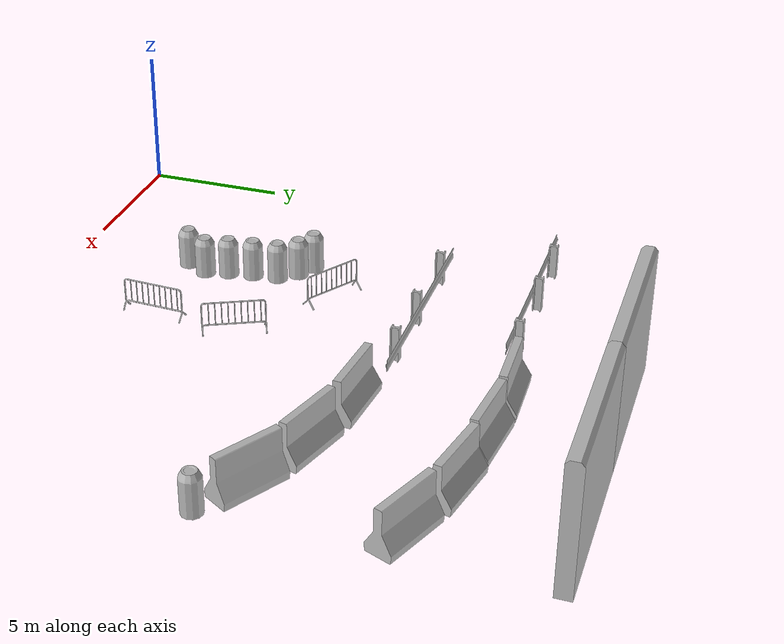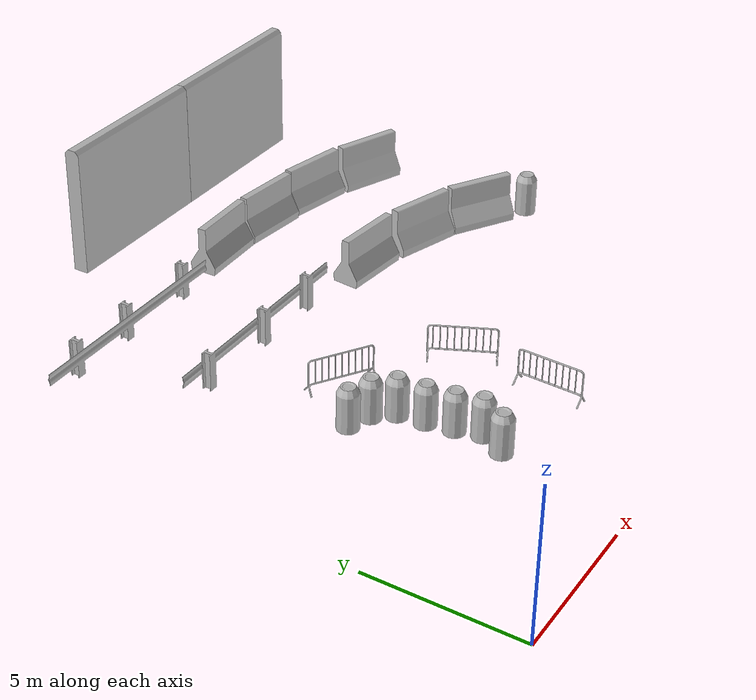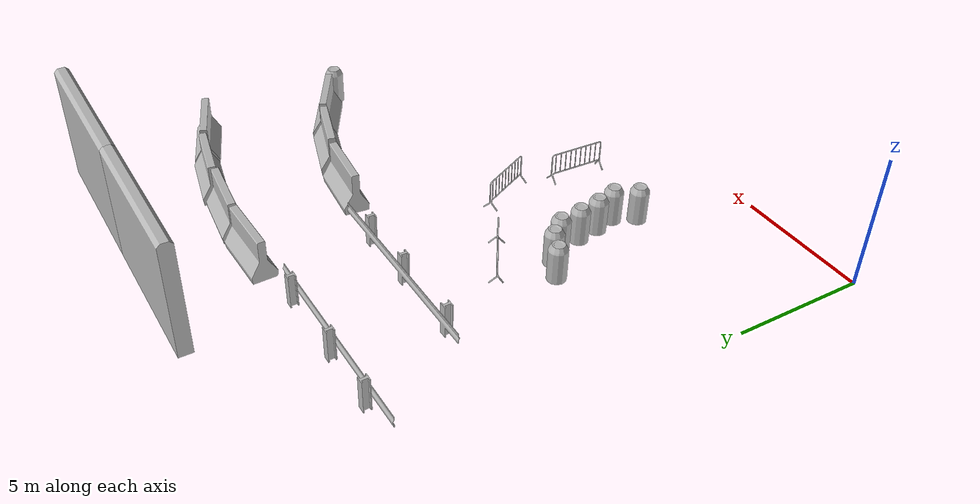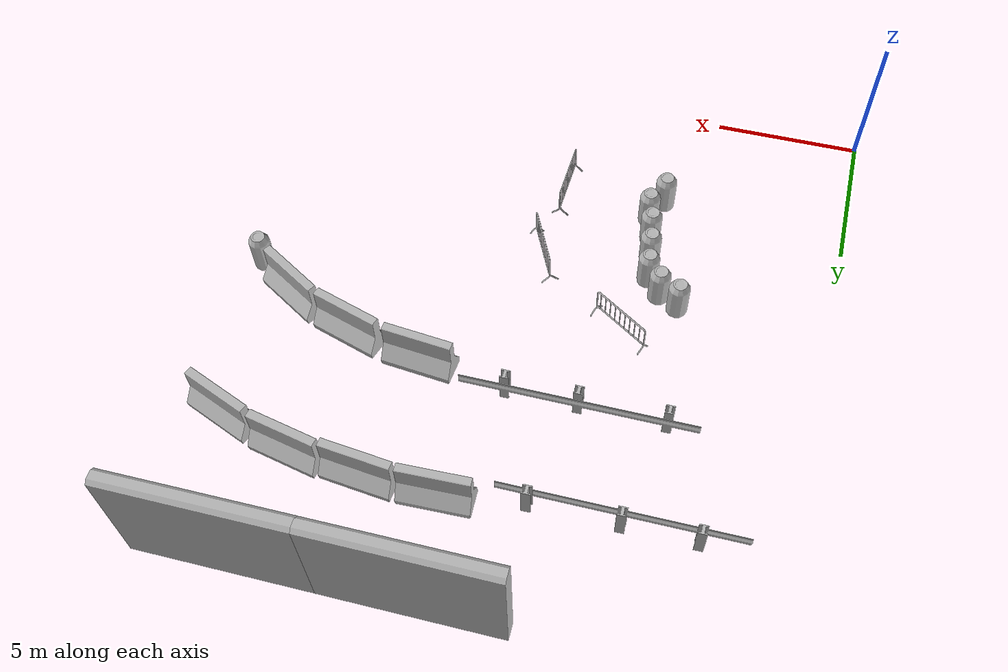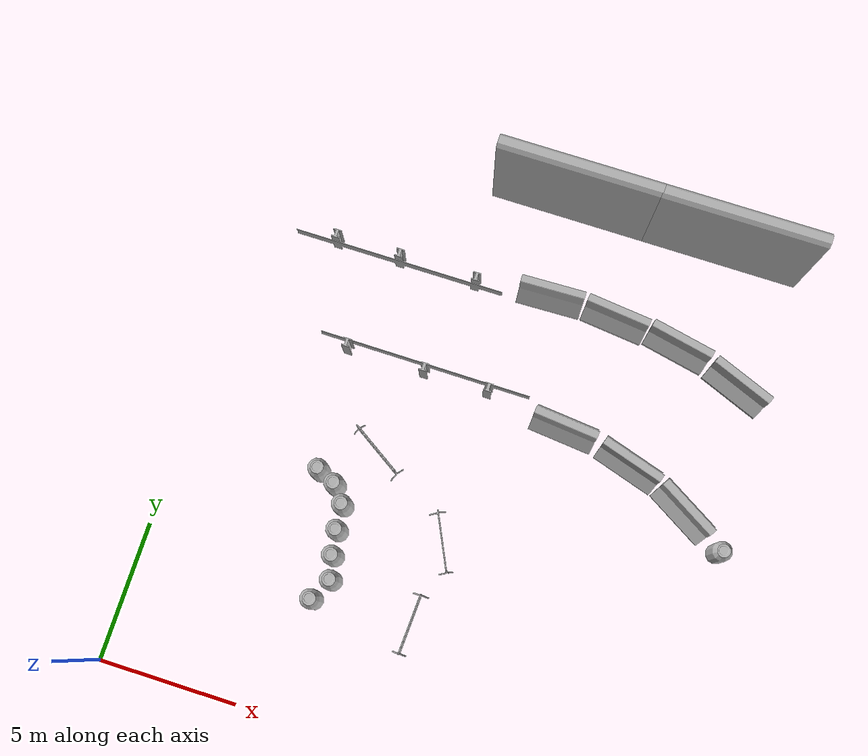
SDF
<sdf version="1.7">
 <world name="default">
  <model name="aws_robomaker_racetrack_CrashworthBucket_01_06">
   <frame name="aws_CrashworthBucket_01::__model__" attached_to="aws_CrashworthBucket_01::body">
    <pose relative_to="__model__">0 0 0 0 -0 0</pose>
   </frame>
   <link name="aws_CrashworthBucket_01::body">
    <pose relative_to="aws_CrashworthBucket_01::__model__">0 0 0 0 -0 0</pose>
    <inertial>
     <mass>5</mass>
     <inertia><ixx>1</ixx><ixy>0</ixy><ixz>0</ixz><iyy>1</iyy><iyz>0</iyz><izz>1</izz></inertia>
    </inertial>
    <visual name="visual">
     <geometry>
      <mesh>
       <uri>file://models/aws_robomaker_racetrack_CrashworthBucket_01/meshes/aws_CrashworthBucket_01_visual.DAE</uri>
      </mesh>
     </geometry>
     <material><shader type="pixel"><normal_map>__default__</normal_map></shader></material>
     <meta><layer>0</layer></meta>
    </visual>
    <collision name="collision_0">
     <geometry>
      <mesh>
       <uri>file://models/aws_robomaker_racetrack_CrashworthBucket_01/meshes/aws_CrashworthBucket_01_collision.DAE</uri>
       <scale>1 1 1</scale>
      </mesh>
     </geometry>
     <surface>
      <friction>
       <ode><mu>1</mu><mu2>1</mu2><fdir1>0 0 0</fdir1><slip1>0</slip1><slip2>0</slip2></ode>
       <torsional>
        <coefficient>1</coefficient>
        <patch_radius>0</patch_radius>
        <surface_radius>0</surface_radius>
        <use_patch_radius>1</use_patch_radius>
        <ode><slip>0</slip></ode>
       </torsional>
      </friction>
      <bounce><restitution_coefficient>0</restitution_coefficient><threshold>1e+06</threshold></bounce>
      <contact>
       <collide_without_contact>0</collide_without_contact>
       <collide_without_contact_bitmask>1</collide_without_contact_bitmask>
       <collide_bitmask>1</collide_bitmask>
       <ode>
        <soft_cfm>0</soft_cfm>
        <soft_erp>0.2</soft_erp>
        <kp>1e+13</kp>
        <kd>1</kd>
        <max_vel>0.01</max_vel>
        <min_depth>0</min_depth>
       </ode>
       <bullet>
        <split_impulse>1</split_impulse>
        <split_impulse_penetration_threshold>-0.01</split_impulse_penetration_threshold>
        <soft_cfm>0</soft_cfm>
        <soft_erp>0.2</soft_erp>
        <kp>1e+13</kp>
        <kd>1</kd>
       </bullet>
      </contact>
     </surface>
    </collision>
   </link>
   <static>1</static>
   <pose>5.18867 8.56895 0 0 0 -0.026658</pose>
  </model>
  <model name="aws_robomaker_racetrack_CrashworthBucket_01_07">
   <frame name="aws_CrashworthBucket_01::__model__" attached_to="aws_CrashworthBucket_01::body">
    <pose relative_to="__model__">0 0 0 0 -0 0</pose>
   </frame>
   <link name="aws_CrashworthBucket_01::body">
    <pose relative_to="aws_CrashworthBucket_01::__model__">0 0 0 0 -0 0</pose>
    <inertial>
     <mass>5</mass>
     <inertia><ixx>1</ixx><ixy>0</ixy><ixz>0</ixz><iyy>1</iyy><iyz>0</iyz><izz>1</izz></inertia>
    </inertial>
    <visual name="visual">
     <geometry>
      <mesh>
       <uri>file://models/aws_robomaker_racetrack_CrashworthBucket_01/meshes/aws_CrashworthBucket_01_visual.DAE</uri>
      </mesh>
     </geometry>
     <material><shader type="pixel"><normal_map>__default__</normal_map></shader></material>
     <meta><layer>0</layer></meta>
    </visual>
    <collision name="collision_0">
     <geometry>
      <mesh>
       <uri>file://models/aws_robomaker_racetrack_CrashworthBucket_01/meshes/aws_CrashworthBucket_01_collision.DAE</uri>
       <scale>1 1 1</scale>
      </mesh>
     </geometry>
     <surface>
      <friction>
       <ode><mu>1</mu><mu2>1</mu2><fdir1>0 0 0</fdir1><slip1>0</slip1><slip2>0</slip2></ode>
       <torsional>
        <coefficient>1</coefficient>
        <patch_radius>0</patch_radius>
        <surface_radius>0</surface_radius>
        <use_patch_radius>1</use_patch_radius>
        <ode><slip>0</slip></ode>
       </torsional>
      </friction>
      <bounce><restitution_coefficient>0</restitution_coefficient><threshold>1e+06</threshold></bounce>
      <contact>
       <collide_without_contact>0</collide_without_contact>
       <collide_without_contact_bitmask>1</collide_without_contact_bitmask>
       <collide_bitmask>1</collide_bitmask>
       <ode>
        <soft_cfm>0</soft_cfm>
        <soft_erp>0.2</soft_erp>
        <kp>1e+13</kp>
        <kd>1</kd>
        <max_vel>0.01</max_vel>
        <min_depth>0</min_depth>
       </ode>
       <bullet>
        <split_impulse>1</split_impulse>
        <split_impulse_penetration_threshold>-0.01</split_impulse_penetration_threshold>
        <soft_cfm>0</soft_cfm>
        <soft_erp>0.2</soft_erp>
        <kp>1e+13</kp>
        <kd>1</kd>
       </bullet>
      </contact>
     </surface>
    </collision>
   </link>
   <static>1</static>
   <pose>5.89383 8.24239 0.054 0 -0 0</pose>
  </model>
  <model name="aws_robomaker_racetrack_CrashworthBucket_01_33">
   <frame name="aws_CrashworthBucket_01::__model__" attached_to="aws_CrashworthBucket_01::body">
    <pose relative_to="__model__">0 0 0 0 -0 0</pose>
   </frame>
   <link name="aws_CrashworthBucket_01::body">
    <pose relative_to="aws_CrashworthBucket_01::__model__">0 0 0 0 -0 0</pose>
    <inertial>
     <mass>5</mass>
     <inertia><ixx>1</ixx><ixy>0</ixy><ixz>0</ixz><iyy>1</iyy><iyz>0</iyz><izz>1</izz></inertia>
    </inertial>
    <visual name="visual">
     <geometry>
      <mesh>
       <uri>file://models/aws_robomaker_racetrack_CrashworthBucket_01/meshes/aws_CrashworthBucket_01_visual.DAE</uri>
      </mesh>
     </geometry>
     <material><shader type="pixel"><normal_map>__default__</normal_map></shader></material>
     <meta><layer>0</layer></meta>
    </visual>
    <collision name="collision_0">
     <geometry>
      <mesh>
       <uri>file://models/aws_robomaker_racetrack_CrashworthBucket_01/meshes/aws_CrashworthBucket_01_collision.DAE</uri>
       <scale>1 1 1</scale>
      </mesh>
     </geometry>
     <surface>
      <friction>
       <ode><mu>1</mu><mu2>1</mu2><fdir1>0 0 0</fdir1><slip1>0</slip1><slip2>0</slip2></ode>
       <torsional>
        <coefficient>1</coefficient>
        <patch_radius>0</patch_radius>
        <surface_radius>0</surface_radius>
        <use_patch_radius>1</use_patch_radius>
        <ode><slip>0</slip></ode>
       </torsional>
      </friction>
      <bounce><restitution_coefficient>0</restitution_coefficient><threshold>1e+06</threshold></bounce>
      <contact>
       <collide_without_contact>0</collide_without_contact>
       <collide_without_contact_bitmask>1</collide_without_contact_bitmask>
       <collide_bitmask>1</collide_bitmask>
       <ode>
        <soft_cfm>0</soft_cfm>
        <soft_erp>0.2</soft_erp>
        <kp>1e+13</kp>
        <kd>1</kd>
        <max_vel>0.01</max_vel>
        <min_depth>0</min_depth>
       </ode>
       <bullet>
        <split_impulse>1</split_impulse>
        <split_impulse_penetration_threshold>-0.01</split_impulse_penetration_threshold>
        <soft_cfm>0</soft_cfm>
        <soft_erp>0.2</soft_erp>
        <kp>1e+13</kp>
        <kd>1</kd>
       </bullet>
      </contact>
     </surface>
    </collision>
   </link>
   <static>1</static>
   <pose>19.3714 10.0864 0.054 0 -0 0</pose>
  </model>
  <model name="aws_robomaker_racetrack_CrashworthBucket_01_38">
   <frame name="aws_CrashworthBucket_01::__model__" attached_to="aws_CrashworthBucket_01::body">
    <pose relative_to="__model__">0 0 0 0 -0 0</pose>
   </frame>
   <link name="aws_CrashworthBucket_01::body">
    <pose relative_to="aws_CrashworthBucket_01::__model__">0 0 0 0 -0 0</pose>
    <inertial>
     <mass>5</mass>
     <inertia><ixx>1</ixx><ixy>0</ixy><ixz>0</ixz><iyy>1</iyy><iyz>0</iyz><izz>1</izz></inertia>
    </inertial>
    <visual name="visual">
     <geometry>
      <mesh>
       <uri>file://models/aws_robomaker_racetrack_CrashworthBucket_01/meshes/aws_CrashworthBucket_01_visual.DAE</uri>
      </mesh>
     </geometry>
     <material><shader type="pixel"><normal_map>__default__</normal_map></shader></material>
     <meta><layer>0</layer></meta>
    </visual>
    <collision name="collision_0">
     <geometry>
      <mesh>
       <uri>file://models/aws_robomaker_racetrack_CrashworthBucket_01/meshes/aws_CrashworthBucket_01_collision.DAE</uri>
       <scale>1 1 1</scale>
      </mesh>
     </geometry>
     <surface>
      <friction>
       <ode><mu>1</mu><mu2>1</mu2><fdir1>0 0 0</fdir1><slip1>0</slip1><slip2>0</slip2></ode>
       <torsional>
        <coefficient>1</coefficient>
        <patch_radius>0</patch_radius>
        <surface_radius>0</surface_radius>
        <use_patch_radius>1</use_patch_radius>
        <ode><slip>0</slip></ode>
       </torsional>
      </friction>
      <bounce><restitution_coefficient>0</restitution_coefficient><threshold>1e+06</threshold></bounce>
      <contact>
       <collide_without_contact>0</collide_without_contact>
       <collide_without_contact_bitmask>1</collide_without_contact_bitmask>
       <collide_bitmask>1</collide_bitmask>
       <ode>
        <soft_cfm>0</soft_cfm>
        <soft_erp>0.2</soft_erp>
        <kp>1e+13</kp>
        <kd>1</kd>
        <max_vel>0.01</max_vel>
        <min_depth>0</min_depth>
       </ode>
       <bullet>
        <split_impulse>1</split_impulse>
        <split_impulse_penetration_threshold>-0.01</split_impulse_penetration_threshold>
        <soft_cfm>0</soft_cfm>
        <soft_erp>0.2</soft_erp>
        <kp>1e+13</kp>
        <kd>1</kd>
       </bullet>
      </contact>
     </surface>
    </collision>
   </link>
   <static>1</static>
   <pose>6.38383 7.63289 0.054 0 -0 0</pose>
  </model>
  <model name="aws_robomaker_racetrack_CrashworthBucket_01_39">
   <frame name="aws_CrashworthBucket_01::__model__" attached_to="aws_CrashworthBucket_01::body">
    <pose relative_to="__model__">0 0 0 0 -0 0</pose>
   </frame>
   <link name="aws_CrashworthBucket_01::body">
    <pose relative_to="aws_CrashworthBucket_01::__model__">0 0 0 0 -0 0</pose>
    <inertial>
     <mass>5</mass>
     <inertia><ixx>1</ixx><ixy>0</ixy><ixz>0</ixz><iyy>1</iyy><iyz>0</iyz><izz>1</izz></inertia>
    </inertial>
    <visual name="visual">
     <geometry>
      <mesh>
       <uri>file://models/aws_robomaker_racetrack_CrashworthBucket_01/meshes/aws_CrashworthBucket_01_visual.DAE</uri>
      </mesh>
     </geometry>
     <material><shader type="pixel"><normal_map>__default__</normal_map></shader></material>
     <meta><layer>0</layer></meta>
    </visual>
    <collision name="collision_0">
     <geometry>
      <mesh>
       <uri>file://models/aws_robomaker_racetrack_CrashworthBucket_01/meshes/aws_CrashworthBucket_01_collision.DAE</uri>
       <scale>1 1 1</scale>
      </mesh>
     </geometry>
     <surface>
      <friction>
       <ode><mu>1</mu><mu2>1</mu2><fdir1>0 0 0</fdir1><slip1>0</slip1><slip2>0</slip2></ode>
       <torsional>
        <coefficient>1</coefficient>
        <patch_radius>0</patch_radius>
        <surface_radius>0</surface_radius>
        <use_patch_radius>1</use_patch_radius>
        <ode><slip>0</slip></ode>
       </torsional>
      </friction>
      <bounce><restitution_coefficient>0</restitution_coefficient><threshold>1e+06</threshold></bounce>
      <contact>
       <collide_without_contact>0</collide_without_contact>
       <collide_without_contact_bitmask>1</collide_without_contact_bitmask>
       <collide_bitmask>1</collide_bitmask>
       <ode>
        <soft_cfm>0</soft_cfm>
        <soft_erp>0.2</soft_erp>
        <kp>1e+13</kp>
        <kd>1</kd>
        <max_vel>0.01</max_vel>
        <min_depth>0</min_depth>
       </ode>
       <bullet>
        <split_impulse>1</split_impulse>
        <split_impulse_penetration_threshold>-0.01</split_impulse_penetration_threshold>
        <soft_cfm>0</soft_cfm>
        <soft_erp>0.2</soft_erp>
        <kp>1e+13</kp>
        <kd>1</kd>
       </bullet>
      </contact>
     </surface>
    </collision>
   </link>
   <static>1</static>
   <pose>6.48514 6.73841 0.054 0 -0 0</pose>
  </model>
  <model name="aws_robomaker_racetrack_CrashworthBucket_01_40">
   <frame name="aws_CrashworthBucket_01::__model__" attached_to="aws_CrashworthBucket_01::body">
    <pose relative_to="__model__">0 0 0 0 -0 0</pose>
   </frame>
   <link name="aws_CrashworthBucket_01::body">
    <pose relative_to="aws_CrashworthBucket_01::__model__">0 0 0 0 -0 0</pose>
    <inertial>
     <mass>5</mass>
     <inertia><ixx>1</ixx><ixy>0</ixy><ixz>0</ixz><iyy>1</iyy><iyz>0</iyz><izz>1</izz></inertia>
    </inertial>
    <visual name="visual">
     <geometry>
      <mesh>
       <uri>file://models/aws_robomaker_racetrack_CrashworthBucket_01/meshes/aws_CrashworthBucket_01_visual.DAE</uri>
      </mesh>
     </geometry>
     <material><shader type="pixel"><normal_map>__default__</normal_map></shader></material>
     <meta><layer>0</layer></meta>
    </visual>
    <collision name="collision_0">
     <geometry>
      <mesh>
       <uri>file://models/aws_robomaker_racetrack_CrashworthBucket_01/meshes/aws_CrashworthBucket_01_collision.DAE</uri>
       <scale>1 1 1</scale>
      </mesh>
     </geometry>
     <surface>
      <friction>
       <ode><mu>1</mu><mu2>1</mu2><fdir1>0 0 0</fdir1><slip1>0</slip1><slip2>0</slip2></ode>
       <torsional>
        <coefficient>1</coefficient>
        <patch_radius>0</patch_radius>
        <surface_radius>0</surface_radius>
        <use_patch_radius>1</use_patch_radius>
        <ode><slip>0</slip></ode>
       </torsional>
      </friction>
      <bounce><restitution_coefficient>0</restitution_coefficient><threshold>1e+06</threshold></bounce>
      <contact>
       <collide_without_contact>0</collide_without_contact>
       <collide_without_contact_bitmask>1</collide_without_contact_bitmask>
       <collide_bitmask>1</collide_bitmask>
       <ode>
        <soft_cfm>0</soft_cfm>
        <soft_erp>0.2</soft_erp>
        <kp>1e+13</kp>
        <kd>1</kd>
        <max_vel>0.01</max_vel>
        <min_depth>0</min_depth>
       </ode>
       <bullet>
        <split_impulse>1</split_impulse>
        <split_impulse_penetration_threshold>-0.01</split_impulse_penetration_threshold>
        <soft_cfm>0</soft_cfm>
        <soft_erp>0.2</soft_erp>
        <kp>1e+13</kp>
        <kd>1</kd>
       </bullet>
      </contact>
     </surface>
    </collision>
   </link>
   <static>1</static>
   <pose>6.63137 5.86016 0.054 0 -0 0</pose>
  </model>
  <model name="aws_robomaker_racetrack_CrashworthBucket_01_41">
   <frame name="aws_CrashworthBucket_01::__model__" attached_to="aws_CrashworthBucket_01::body">
    <pose relative_to="__model__">0 0 0 0 -0 0</pose>
   </frame>
   <link name="aws_CrashworthBucket_01::body">
    <pose relative_to="aws_CrashworthBucket_01::__model__">0 0 0 0 -0 0</pose>
    <inertial>
     <mass>5</mass>
     <inertia><ixx>1</ixx><ixy>0</ixy><ixz>0</ixz><iyy>1</iyy><iyz>0</iyz><izz>1</izz></inertia>
    </inertial>
    <visual name="visual">
     <geometry>
      <mesh>
       <uri>file://models/aws_robomaker_racetrack_CrashworthBucket_01/meshes/aws_CrashworthBucket_01_visual.DAE</uri>
      </mesh>
     </geometry>
     <material><shader type="pixel"><normal_map>__default__</normal_map></shader></material>
     <meta><layer>0</layer></meta>
    </visual>
    <collision name="collision_0">
     <geometry>
      <mesh>
       <uri>file://models/aws_robomaker_racetrack_CrashworthBucket_01/meshes/aws_CrashworthBucket_01_collision.DAE</uri>
       <scale>1 1 1</scale>
      </mesh>
     </geometry>
     <surface>
      <friction>
       <ode><mu>1</mu><mu2>1</mu2><fdir1>0 0 0</fdir1><slip1>0</slip1><slip2>0</slip2></ode>
       <torsional>
        <coefficient>1</coefficient>
        <patch_radius>0</patch_radius>
        <surface_radius>0</surface_radius>
        <use_patch_radius>1</use_patch_radius>
        <ode><slip>0</slip></ode>
       </torsional>
      </friction>
      <bounce><restitution_coefficient>0</restitution_coefficient><threshold>1e+06</threshold></bounce>
      <contact>
       <collide_without_contact>0</collide_without_contact>
       <collide_without_contact_bitmask>1</collide_without_contact_bitmask>
       <collide_bitmask>1</collide_bitmask>
       <ode>
        <soft_cfm>0</soft_cfm>
        <soft_erp>0.2</soft_erp>
        <kp>1e+13</kp>
        <kd>1</kd>
        <max_vel>0.01</max_vel>
        <min_depth>0</min_depth>
       </ode>
       <bullet>
        <split_impulse>1</split_impulse>
        <split_impulse_penetration_threshold>-0.01</split_impulse_penetration_threshold>
        <soft_cfm>0</soft_cfm>
        <soft_erp>0.2</soft_erp>
        <kp>1e+13</kp>
        <kd>1</kd>
       </bullet>
      </contact>
     </surface>
    </collision>
   </link>
   <static>1</static>
   <pose>6.84089 5.04433 0.054 0 -0 0</pose>
  </model>
  <model name="aws_robomaker_racetrack_CrashworthBucket_01_42">
   <frame name="aws_CrashworthBucket_01::__model__" attached_to="aws_CrashworthBucket_01::body">
    <pose relative_to="__model__">0 0 0 0 -0 0</pose>
   </frame>
   <link name="aws_CrashworthBucket_01::body">
    <pose relative_to="aws_CrashworthBucket_01::__model__">0 0 0 0 -0 0</pose>
    <inertial>
     <mass>5</mass>
     <inertia><ixx>1</ixx><ixy>0</ixy><ixz>0</ixz><iyy>1</iyy><iyz>0</iyz><izz>1</izz></inertia>
    </inertial>
    <visual name="visual">
     <geometry>
      <mesh>
       <uri>file://models/aws_robomaker_racetrack_CrashworthBucket_01/meshes/aws_CrashworthBucket_01_visual.DAE</uri>
      </mesh>
     </geometry>
     <material><shader type="pixel"><normal_map>__default__</normal_map></shader></material>
     <meta><layer>0</layer></meta>
    </visual>
    <collision name="collision_0">
     <geometry>
      <mesh>
       <uri>file://models/aws_robomaker_racetrack_CrashworthBucket_01/meshes/aws_CrashworthBucket_01_collision.DAE</uri>
       <scale>1 1 1</scale>
      </mesh>
     </geometry>
     <surface>
      <friction>
       <ode><mu>1</mu><mu2>1</mu2><fdir1>0 0 0</fdir1><slip1>0</slip1><slip2>0</slip2></ode>
       <torsional>
        <coefficient>1</coefficient>
        <patch_radius>0</patch_radius>
        <surface_radius>0</surface_radius>
        <use_patch_radius>1</use_patch_radius>
        <ode><slip>0</slip></ode>
       </torsional>
      </friction>
      <bounce><restitution_coefficient>0</restitution_coefficient><threshold>1e+06</threshold></bounce>
      <contact>
       <collide_without_contact>0</collide_without_contact>
       <collide_without_contact_bitmask>1</collide_without_contact_bitmask>
       <collide_bitmask>1</collide_bitmask>
       <ode>
        <soft_cfm>0</soft_cfm>
        <soft_erp>0.2</soft_erp>
        <kp>1e+13</kp>
        <kd>1</kd>
        <max_vel>0.01</max_vel>
        <min_depth>0</min_depth>
       </ode>
       <bullet>
        <split_impulse>1</split_impulse>
        <split_impulse_penetration_threshold>-0.01</split_impulse_penetration_threshold>
        <soft_cfm>0</soft_cfm>
        <soft_erp>0.2</soft_erp>
        <kp>1e+13</kp>
        <kd>1</kd>
       </bullet>
      </contact>
     </surface>
    </collision>
   </link>
   <static>1</static>
   <pose>6.41586 4.22597 0.054 0 -0 0</pose>
  </model>
  <model name="aws_robomaker_racetrack_Fence_01_00">
   <frame name="aws_Fence_01::__model__" attached_to="aws_Fence_01::body">
    <pose relative_to="__model__">0 0 0 0 -0 0</pose>
   </frame>
   <link name="aws_Fence_01::body">
    <pose relative_to="aws_Fence_01::__model__">0 0 0 0 -0 0</pose>
    <inertial>
     <mass>5</mass>
     <inertia><ixx>1</ixx><ixy>0</ixy><ixz>0</ixz><iyy>1</iyy><iyz>0</iyz><izz>1</izz></inertia>
    </inertial>
    <visual name="visual">
     <geometry>
      <mesh><uri>file://models/aws_robomaker_racetrack_Fence_01/meshes/aws_Fence_01_visual.DAE</uri></mesh>
     </geometry>
     <material><shader type="pixel"><normal_map>__default__</normal_map></shader></material>
     <meta><layer>0</layer></meta>
    </visual>
    <collision name="collision_0">
     <geometry>
      <mesh>
       <uri>file://models/aws_robomaker_racetrack_Fence_01/meshes/aws_Fence_01_collision.DAE</uri>
       <scale>1 1 1</scale>
      </mesh>
     </geometry>
     <surface>
      <friction>
       <ode><mu>1</mu><mu2>1</mu2><fdir1>0 0 0</fdir1><slip1>0</slip1><slip2>0</slip2></ode>
       <torsional>
        <coefficient>1</coefficient>
        <patch_radius>0</patch_radius>
        <surface_radius>0</surface_radius>
        <use_patch_radius>1</use_patch_radius>
        <ode><slip>0</slip></ode>
       </torsional>
      </friction>
      <bounce><restitution_coefficient>0</restitution_coefficient><threshold>1e+06</threshold></bounce>
      <contact>
       <collide_without_contact>0</collide_without_contact>
       <collide_without_contact_bitmask>1</collide_without_contact_bitmask>
       <collide_bitmask>1</collide_bitmask>
       <ode>
        <soft_cfm>0</soft_cfm>
        <soft_erp>0.2</soft_erp>
        <kp>1e+13</kp>
        <kd>1</kd>
        <max_vel>0.01</max_vel>
        <min_depth>0</min_depth>
       </ode>
       <bullet>
        <split_impulse>1</split_impulse>
        <split_impulse_penetration_threshold>-0.01</split_impulse_penetration_threshold>
        <soft_cfm>0</soft_cfm>
        <soft_erp>0.2</soft_erp>
        <kp>1e+13</kp>
        <kd>1</kd>
       </bullet>
      </contact>
     </surface>
    </collision>
   </link>
   <static>1</static>
   <pose>7.553 13.1587 0 0 0 -1.57272</pose>
  </model>
  <model name="aws_robomaker_racetrack_Fence_01_15">
   <frame name="aws_Fence_01::__model__" attached_to="aws_Fence_01::body">
    <pose relative_to="__model__">0 0 0 0 -0 0</pose>
   </frame>
   <link name="aws_Fence_01::body">
    <pose relative_to="aws_Fence_01::__model__">0 0 0 0 -0 0</pose>
    <inertial>
     <mass>5</mass>
     <inertia><ixx>1</ixx><ixy>0</ixy><ixz>0</ixz><iyy>1</iyy><iyz>0</iyz><izz>1</izz></inertia>
    </inertial>
    <visual name="visual">
     <geometry>
      <mesh><uri>file://models/aws_robomaker_racetrack_Fence_01/meshes/aws_Fence_01_visual.DAE</uri></mesh>
     </geometry>
     <material><shader type="pixel"><normal_map>__default__</normal_map></shader></material>
     <meta><layer>0</layer></meta>
    </visual>
    <collision name="collision_0">
     <geometry>
      <mesh>
       <uri>file://models/aws_robomaker_racetrack_Fence_01/meshes/aws_Fence_01_collision.DAE</uri>
       <scale>1 1 1</scale>
      </mesh>
     </geometry>
     <surface>
      <friction>
       <ode><mu>1</mu><mu2>1</mu2><fdir1>0 0 0</fdir1><slip1>0</slip1><slip2>0</slip2></ode>
       <torsional>
        <coefficient>1</coefficient>
        <patch_radius>0</patch_radius>
        <surface_radius>0</surface_radius>
        <use_patch_radius>1</use_patch_radius>
        <ode><slip>0</slip></ode>
       </torsional>
      </friction>
      <bounce><restitution_coefficient>0</restitution_coefficient><threshold>1e+06</threshold></bounce>
      <contact>
       <collide_without_contact>0</collide_without_contact>
       <collide_without_contact_bitmask>1</collide_without_contact_bitmask>
       <collide_bitmask>1</collide_bitmask>
       <ode>
        <soft_cfm>0</soft_cfm>
        <soft_erp>0.2</soft_erp>
        <kp>1e+13</kp>
        <kd>1</kd>
        <max_vel>0.01</max_vel>
        <min_depth>0</min_depth>
       </ode>
       <bullet>
        <split_impulse>1</split_impulse>
        <split_impulse_penetration_threshold>-0.01</split_impulse_penetration_threshold>
        <soft_cfm>0</soft_cfm>
        <soft_erp>0.2</soft_erp>
        <kp>1e+13</kp>
        <kd>1</kd>
       </bullet>
      </contact>
     </surface>
    </collision>
   </link>
   <static>1</static>
   <pose>5.47501 16.8189 0.054 0 -0 1.57158</pose>
  </model>
  <model name="aws_robomaker_racetrack_Fence_02_06">
   <frame name="aws_Fence_02::__model__" attached_to="aws_Fence_02::body">
    <pose relative_to="__model__">0 0 0 0 -0 0</pose>
   </frame>
   <link name="aws_Fence_02::body">
    <pose relative_to="aws_Fence_02::__model__">0 0 0 0 -0 0</pose>
    <inertial>
     <mass>5</mass>
     <inertia><ixx>9.6</ixx><ixy>0</ixy><ixz>0</ixz><iyy>8.2</iyy><iyz>0</iyz><izz>2.1</izz></inertia>
    </inertial>
    <visual name="visual">
     <geometry>
      <mesh><uri>file://models/aws_robomaker_racetrack_Fence_02/meshes/aws_Fence_02_visual.DAE</uri></mesh>
     </geometry>
     <material><shader type="pixel"><normal_map>__default__</normal_map></shader></material>
     <meta><layer>0</layer></meta>
    </visual>
    <collision name="collision_0">
     <geometry>
      <mesh>
       <uri>file://models/aws_robomaker_racetrack_Fence_02/meshes/aws_Fence_02_collision.DAE</uri>
       <scale>1 1 1</scale>
      </mesh>
     </geometry>
     <surface>
      <friction>
       <ode><mu>1</mu><mu2>1</mu2><fdir1>0 0 0</fdir1><slip1>0</slip1><slip2>0</slip2></ode>
       <torsional>
        <coefficient>1</coefficient>
        <patch_radius>0</patch_radius>
        <surface_radius>0</surface_radius>
        <use_patch_radius>1</use_patch_radius>
        <ode><slip>0</slip></ode>
       </torsional>
      </friction>
      <bounce><restitution_coefficient>0</restitution_coefficient><threshold>1e+06</threshold></bounce>
      <contact>
       <collide_without_contact>0</collide_without_contact>
       <collide_without_contact_bitmask>1</collide_without_contact_bitmask>
       <collide_bitmask>1</collide_bitmask>
      </contact>
     </surface>
    </collision>
   </link>
   <static>1</static>
   <pose>6.89586 9.88798 0 0 0 -2.14047</pose>
  </model>
  <model name="aws_robomaker_racetrack_Fence_02_10">
   <frame name="aws_Fence_02::__model__" attached_to="aws_Fence_02::body">
    <pose relative_to="__model__">0 0 0 0 -0 0</pose>
   </frame>
   <link name="aws_Fence_02::body">
    <pose relative_to="aws_Fence_02::__model__">0 0 0 0 -0 0</pose>
    <inertial>
     <mass>5</mass>
     <inertia><ixx>9.6</ixx><ixy>0</ixy><ixz>0</ixz><iyy>8.2</iyy><iyz>0</iyz><izz>2.1</izz></inertia>
    </inertial>
    <visual name="visual">
     <geometry>
      <mesh><uri>file://models/aws_robomaker_racetrack_Fence_02/meshes/aws_Fence_02_visual.DAE</uri></mesh>
     </geometry>
     <material><shader type="pixel"><normal_map>__default__</normal_map></shader></material>
     <meta><layer>0</layer></meta>
    </visual>
    <collision name="collision_0">
     <geometry>
      <mesh>
       <uri>file://models/aws_robomaker_racetrack_Fence_02/meshes/aws_Fence_02_collision.DAE</uri>
       <scale>1 1 1</scale>
      </mesh>
     </geometry>
     <surface>
      <friction>
       <ode><mu>1</mu><mu2>1</mu2><fdir1>0 0 0</fdir1><slip1>0</slip1><slip2>0</slip2></ode>
       <torsional>
        <coefficient>1</coefficient>
        <patch_radius>0</patch_radius>
        <surface_radius>0</surface_radius>
        <use_patch_radius>1</use_patch_radius>
        <ode><slip>0</slip></ode>
       </torsional>
      </friction>
      <bounce><restitution_coefficient>0</restitution_coefficient><threshold>1e+06</threshold></bounce>
      <contact>
       <collide_without_contact>0</collide_without_contact>
       <collide_without_contact_bitmask>1</collide_without_contact_bitmask>
       <collide_bitmask>1</collide_bitmask>
      </contact>
     </surface>
    </collision>
   </link>
   <static>1</static>
   <pose>9.89165 4.45225 0 0 0 -0.045392</pose>
  </model>
  <model name="aws_robomaker_racetrack_Fence_02_11">
   <frame name="aws_Fence_02::__model__" attached_to="aws_Fence_02::body">
    <pose relative_to="__model__">0 0 0 0 -0 0</pose>
   </frame>
   <link name="aws_Fence_02::body">
    <pose relative_to="aws_Fence_02::__model__">0 0 0 0 -0 0</pose>
    <inertial>
     <mass>5</mass>
     <inertia><ixx>9.6</ixx><ixy>0</ixy><ixz>0</ixz><iyy>8.2</iyy><iyz>0</iyz><izz>2.1</izz></inertia>
    </inertial>
    <visual name="visual">
     <geometry>
      <mesh><uri>file://models/aws_robomaker_racetrack_Fence_02/meshes/aws_Fence_02_visual.DAE</uri></mesh>
     </geometry>
     <material><shader type="pixel"><normal_map>__default__</normal_map></shader></material>
     <meta><layer>0</layer></meta>
    </visual>
    <collision name="collision_0">
     <geometry>
      <mesh>
       <uri>file://models/aws_robomaker_racetrack_Fence_02/meshes/aws_Fence_02_collision.DAE</uri>
       <scale>1 1 1</scale>
      </mesh>
     </geometry>
     <surface>
      <friction>
       <ode><mu>1</mu><mu2>1</mu2><fdir1>0 0 0</fdir1><slip1>0</slip1><slip2>0</slip2></ode>
       <torsional>
        <coefficient>1</coefficient>
        <patch_radius>0</patch_radius>
        <surface_radius>0</surface_radius>
        <use_patch_radius>1</use_patch_radius>
        <ode><slip>0</slip></ode>
       </torsional>
      </friction>
      <bounce><restitution_coefficient>0</restitution_coefficient><threshold>1e+06</threshold></bounce>
      <contact>
       <collide_without_contact>0</collide_without_contact>
       <collide_without_contact_bitmask>1</collide_without_contact_bitmask>
       <collide_bitmask>1</collide_bitmask>
      </contact>
     </surface>
    </collision>
   </link>
   <static>1</static>
   <pose>10.0686 7.48939 0 0 -0 0.450699</pose>
  </model>
  <model name="aws_robomaker_racetrack_StonePier_01_05">
   <frame name="aws_StonePier_01::__model__" attached_to="aws_StonePier_01::body">
    <pose relative_to="__model__">0 0 0 0 -0 0</pose>
   </frame>
   <link name="aws_StonePier_01::body">
    <pose relative_to="aws_StonePier_01::__model__">0 0 0 0 -0 0</pose>
    <inertial>
     <mass>10</mass>
     <inertia><ixx>0</ixx><ixy>0</ixy><ixz>0</ixz><iyy>0</iyy><iyz>0</iyz><izz>0</izz></inertia>
    </inertial>
    <visual name="visual">
     <geometry>
      <mesh><uri>file://models/aws_robomaker_racetrack_StonePier_01/meshes/aws_StonePier_01_visual.DAE</uri></mesh>
     </geometry>
     <material><shader type="pixel"><normal_map>__default__</normal_map></shader></material>
     <meta><layer>0</layer></meta>
    </visual>
    <collision name="collision_0">
     <geometry>
      <mesh>
       <uri>file://models/aws_robomaker_racetrack_StonePier_01/meshes/aws_StonePier_01_collision.DAE</uri>
       <scale>1 1 1</scale>
      </mesh>
     </geometry>
     <surface>
      <friction>
       <ode><mu>1</mu><mu2>1</mu2><fdir1>0 0 0</fdir1><slip1>0</slip1><slip2>0</slip2></ode>
       <torsional>
        <coefficient>1</coefficient>
        <patch_radius>0</patch_radius>
        <surface_radius>0</surface_radius>
        <use_patch_radius>1</use_patch_radius>
        <ode><slip>0</slip></ode>
       </torsional>
      </friction>
      <bounce><restitution_coefficient>0</restitution_coefficient><threshold>1e+06</threshold></bounce>
      <contact>
       <collide_without_contact>0</collide_without_contact>
       <collide_without_contact_bitmask>1</collide_without_contact_bitmask>
       <collide_bitmask>1</collide_bitmask>
       <ode>
        <soft_cfm>0</soft_cfm>
        <soft_erp>0.2</soft_erp>
        <kp>1e+13</kp>
        <kd>1</kd>
        <max_vel>0.01</max_vel>
        <min_depth>0</min_depth>
       </ode>
       <bullet>
        <split_impulse>1</split_impulse>
        <split_impulse_penetration_threshold>-0.01</split_impulse_penetration_threshold>
        <soft_cfm>0</soft_cfm>
        <soft_erp>0.2</soft_erp>
        <kp>1e+13</kp>
        <kd>1</kd>
       </bullet>
      </contact>
     </surface>
    </collision>
   </link>
   <static>1</static>
   <pose>11.0892 17.2043 0.054 0 -0 0.029389</pose>
  </model>
  <model name="aws_robomaker_racetrack_StonePier_01_06">
   <frame name="aws_StonePier_01::__model__" attached_to="aws_StonePier_01::body">
    <pose relative_to="__model__">0 0 0 0 -0 0</pose>
   </frame>
   <link name="aws_StonePier_01::body">
    <pose relative_to="aws_StonePier_01::__model__">0 0 0 0 -0 0</pose>
    <inertial>
     <mass>10</mass>
     <inertia><ixx>0</ixx><ixy>0</ixy><ixz>0</ixz><iyy>0</iyy><iyz>0</iyz><izz>0</izz></inertia>
    </inertial>
    <visual name="visual">
     <geometry>
      <mesh><uri>file://models/aws_robomaker_racetrack_StonePier_01/meshes/aws_StonePier_01_visual.DAE</uri></mesh>
     </geometry>
     <material><shader type="pixel"><normal_map>__default__</normal_map></shader></material>
     <meta><layer>0</layer></meta>
    </visual>
    <collision name="collision_0">
     <geometry>
      <mesh>
       <uri>file://models/aws_robomaker_racetrack_StonePier_01/meshes/aws_StonePier_01_collision.DAE</uri>
       <scale>1 1 1</scale>
      </mesh>
     </geometry>
     <surface>
      <friction>
       <ode><mu>1</mu><mu2>1</mu2><fdir1>0 0 0</fdir1><slip1>0</slip1><slip2>0</slip2></ode>
       <torsional>
        <coefficient>1</coefficient>
        <patch_radius>0</patch_radius>
        <surface_radius>0</surface_radius>
        <use_patch_radius>1</use_patch_radius>
        <ode><slip>0</slip></ode>
       </torsional>
      </friction>
      <bounce><restitution_coefficient>0</restitution_coefficient><threshold>1e+06</threshold></bounce>
      <contact>
       <collide_without_contact>0</collide_without_contact>
       <collide_without_contact_bitmask>1</collide_without_contact_bitmask>
       <collide_bitmask>1</collide_bitmask>
       <ode>
        <soft_cfm>0</soft_cfm>
        <soft_erp>0.2</soft_erp>
        <kp>1e+13</kp>
        <kd>1</kd>
        <max_vel>0.01</max_vel>
        <min_depth>0</min_depth>
       </ode>
       <bullet>
        <split_impulse>1</split_impulse>
        <split_impulse_penetration_threshold>-0.01</split_impulse_penetration_threshold>
        <soft_cfm>0</soft_cfm>
        <soft_erp>0.2</soft_erp>
        <kp>1e+13</kp>
        <kd>1</kd>
       </bullet>
      </contact>
     </surface>
    </collision>
   </link>
   <static>1</static>
   <pose>13.5633 17.1121 0.054 0 0 -0.108086</pose>
  </model>
  <model name="aws_robomaker_racetrack_StonePier_01_07">
   <frame name="aws_StonePier_01::__model__" attached_to="aws_StonePier_01::body">
    <pose relative_to="__model__">0 0 0 0 -0 0</pose>
   </frame>
   <link name="aws_StonePier_01::body">
    <pose relative_to="aws_StonePier_01::__model__">0 0 0 0 -0 0</pose>
    <inertial>
     <mass>10</mass>
     <inertia><ixx>0</ixx><ixy>0</ixy><ixz>0</ixz><iyy>0</iyy><iyz>0</iyz><izz>0</izz></inertia>
    </inertial>
    <visual name="visual">
     <geometry>
      <mesh><uri>file://models/aws_robomaker_racetrack_StonePier_01/meshes/aws_StonePier_01_visual.DAE</uri></mesh>
     </geometry>
     <material><shader type="pixel"><normal_map>__default__</normal_map></shader></material>
     <meta><layer>0</layer></meta>
    </visual>
    <collision name="collision_0">
     <geometry>
      <mesh>
       <uri>file://models/aws_robomaker_racetrack_StonePier_01/meshes/aws_StonePier_01_collision.DAE</uri>
       <scale>1 1 1</scale>
      </mesh>
     </geometry>
     <surface>
      <friction>
       <ode><mu>1</mu><mu2>1</mu2><fdir1>0 0 0</fdir1><slip1>0</slip1><slip2>0</slip2></ode>
       <torsional>
        <coefficient>1</coefficient>
        <patch_radius>0</patch_radius>
        <surface_radius>0</surface_radius>
        <use_patch_radius>1</use_patch_radius>
        <ode><slip>0</slip></ode>
       </torsional>
      </friction>
      <bounce><restitution_coefficient>0</restitution_coefficient><threshold>1e+06</threshold></bounce>
      <contact>
       <collide_without_contact>0</collide_without_contact>
       <collide_without_contact_bitmask>1</collide_without_contact_bitmask>
       <collide_bitmask>1</collide_bitmask>
       <ode>
        <soft_cfm>0</soft_cfm>
        <soft_erp>0.2</soft_erp>
        <kp>1e+13</kp>
        <kd>1</kd>
        <max_vel>0.01</max_vel>
        <min_depth>0</min_depth>
       </ode>
       <bullet>
        <split_impulse>1</split_impulse>
        <split_impulse_penetration_threshold>-0.01</split_impulse_penetration_threshold>
        <soft_cfm>0</soft_cfm>
        <soft_erp>0.2</soft_erp>
        <kp>1e+13</kp>
        <kd>1</kd>
       </bullet>
      </contact>
     </surface>
    </collision>
   </link>
   <static>1</static>
   <pose>16.0013 16.8104 0.054 0 0 -0.206147</pose>
  </model>
  <model name="aws_robomaker_racetrack_StonePier_01_08">
   <frame name="aws_StonePier_01::__model__" attached_to="aws_StonePier_01::body">
    <pose relative_to="__model__">0 0 0 0 -0 0</pose>
   </frame>
   <link name="aws_StonePier_01::body">
    <pose relative_to="aws_StonePier_01::__model__">0 0 0 0 -0 0</pose>
    <inertial>
     <mass>10</mass>
     <inertia><ixx>0</ixx><ixy>0</ixy><ixz>0</ixz><iyy>0</iyy><iyz>0</iyz><izz>0</izz></inertia>
    </inertial>
    <visual name="visual">
     <geometry>
      <mesh><uri>file://models/aws_robomaker_racetrack_StonePier_01/meshes/aws_StonePier_01_visual.DAE</uri></mesh>
     </geometry>
     <material><shader type="pixel"><normal_map>__default__</normal_map></shader></material>
     <meta><layer>0</layer></meta>
    </visual>
    <collision name="collision_0">
     <geometry>
      <mesh>
       <uri>file://models/aws_robomaker_racetrack_StonePier_01/meshes/aws_StonePier_01_collision.DAE</uri>
       <scale>1 1 1</scale>
      </mesh>
     </geometry>
     <surface>
      <friction>
       <ode><mu>1</mu><mu2>1</mu2><fdir1>0 0 0</fdir1><slip1>0</slip1><slip2>0</slip2></ode>
       <torsional>
        <coefficient>1</coefficient>
        <patch_radius>0</patch_radius>
        <surface_radius>0</surface_radius>
        <use_patch_radius>1</use_patch_radius>
        <ode><slip>0</slip></ode>
       </torsional>
      </friction>
      <bounce><restitution_coefficient>0</restitution_coefficient><threshold>1e+06</threshold></bounce>
      <contact>
       <collide_without_contact>0</collide_without_contact>
       <collide_without_contact_bitmask>1</collide_without_contact_bitmask>
       <collide_bitmask>1</collide_bitmask>
       <ode>
        <soft_cfm>0</soft_cfm>
        <soft_erp>0.2</soft_erp>
        <kp>1e+13</kp>
        <kd>1</kd>
        <max_vel>0.01</max_vel>
        <min_depth>0</min_depth>
       </ode>
       <bullet>
        <split_impulse>1</split_impulse>
        <split_impulse_penetration_threshold>-0.01</split_impulse_penetration_threshold>
        <soft_cfm>0</soft_cfm>
        <soft_erp>0.2</soft_erp>
        <kp>1e+13</kp>
        <kd>1</kd>
       </bullet>
      </contact>
     </surface>
    </collision>
   </link>
   <static>1</static>
   <pose>18.4263 16.0384 0.054 0 0 -0.379591</pose>
  </model>
  <model name="aws_robomaker_racetrack_StonePier_01_09">
   <frame name="aws_StonePier_01::__model__" attached_to="aws_StonePier_01::body">
    <pose relative_to="__model__">0 0 0 0 -0 0</pose>
   </frame>
   <link name="aws_StonePier_01::body">
    <pose relative_to="aws_StonePier_01::__model__">0 0 0 0 -0 0</pose>
    <inertial>
     <mass>10</mass>
     <inertia><ixx>0</ixx><ixy>0</ixy><ixz>0</ixz><iyy>0</iyy><iyz>0</iyz><izz>0</izz></inertia>
    </inertial>
    <visual name="visual">
     <geometry>
      <mesh><uri>file://models/aws_robomaker_racetrack_StonePier_01/meshes/aws_StonePier_01_visual.DAE</uri></mesh>
     </geometry>
     <material><shader type="pixel"><normal_map>__default__</normal_map></shader></material>
     <meta><layer>0</layer></meta>
    </visual>
    <collision name="collision_0">
     <geometry>
      <mesh>
       <uri>file://models/aws_robomaker_racetrack_StonePier_01/meshes/aws_StonePier_01_collision.DAE</uri>
       <scale>1 1 1</scale>
      </mesh>
     </geometry>
     <surface>
      <friction>
       <ode><mu>1</mu><mu2>1</mu2><fdir1>0 0 0</fdir1><slip1>0</slip1><slip2>0</slip2></ode>
       <torsional>
        <coefficient>1</coefficient>
        <patch_radius>0</patch_radius>
        <surface_radius>0</surface_radius>
        <use_patch_radius>1</use_patch_radius>
        <ode><slip>0</slip></ode>
       </torsional>
      </friction>
      <bounce><restitution_coefficient>0</restitution_coefficient><threshold>1e+06</threshold></bounce>
      <contact>
       <collide_without_contact>0</collide_without_contact>
       <collide_without_contact_bitmask>1</collide_without_contact_bitmask>
       <collide_bitmask>1</collide_bitmask>
       <ode>
        <soft_cfm>0</soft_cfm>
        <soft_erp>0.2</soft_erp>
        <kp>1e+13</kp>
        <kd>1</kd>
        <max_vel>0.01</max_vel>
        <min_depth>0</min_depth>
       </ode>
       <bullet>
        <split_impulse>1</split_impulse>
        <split_impulse_penetration_threshold>-0.01</split_impulse_penetration_threshold>
        <soft_cfm>0</soft_cfm>
        <soft_erp>0.2</soft_erp>
        <kp>1e+13</kp>
        <kd>1</kd>
       </bullet>
      </contact>
     </surface>
    </collision>
   </link>
   <static>1</static>
   <pose>17.8323 11.1467 0.054 0 0 -0.536699</pose>
  </model>
  <model name="aws_robomaker_racetrack_StonePier_01_33">
   <frame name="aws_StonePier_01::__model__" attached_to="aws_StonePier_01::body">
    <pose relative_to="__model__">0 0 0 0 -0 0</pose>
   </frame>
   <link name="aws_StonePier_01::body">
    <pose relative_to="aws_StonePier_01::__model__">0 0 0 0 -0 0</pose>
    <inertial>
     <mass>10</mass>
     <inertia><ixx>0</ixx><ixy>0</ixy><ixz>0</ixz><iyy>0</iyy><iyz>0</iyz><izz>0</izz></inertia>
    </inertial>
    <visual name="visual">
     <geometry>
      <mesh><uri>file://models/aws_robomaker_racetrack_StonePier_01/meshes/aws_StonePier_01_visual.DAE</uri></mesh>
     </geometry>
     <material><shader type="pixel"><normal_map>__default__</normal_map></shader></material>
     <meta><layer>0</layer></meta>
    </visual>
    <collision name="collision_0">
     <geometry>
      <mesh>
       <uri>file://models/aws_robomaker_racetrack_StonePier_01/meshes/aws_StonePier_01_collision.DAE</uri>
       <scale>1 1 1</scale>
      </mesh>
     </geometry>
     <surface>
      <friction>
       <ode><mu>1</mu><mu2>1</mu2><fdir1>0 0 0</fdir1><slip1>0</slip1><slip2>0</slip2></ode>
       <torsional>
        <coefficient>1</coefficient>
        <patch_radius>0</patch_radius>
        <surface_radius>0</surface_radius>
        <use_patch_radius>1</use_patch_radius>
        <ode><slip>0</slip></ode>
       </torsional>
      </friction>
      <bounce><restitution_coefficient>0</restitution_coefficient><threshold>1e+06</threshold></bounce>
      <contact>
       <collide_without_contact>0</collide_without_contact>
       <collide_without_contact_bitmask>1</collide_without_contact_bitmask>
       <collide_bitmask>1</collide_bitmask>
       <ode>
        <soft_cfm>0</soft_cfm>
        <soft_erp>0.2</soft_erp>
        <kp>1e+13</kp>
        <kd>1</kd>
        <max_vel>0.01</max_vel>
        <min_depth>0</min_depth>
       </ode>
       <bullet>
        <split_impulse>1</split_impulse>
        <split_impulse_penetration_threshold>-0.01</split_impulse_penetration_threshold>
        <soft_cfm>0</soft_cfm>
        <soft_erp>0.2</soft_erp>
        <kp>1e+13</kp>
        <kd>1</kd>
       </bullet>
      </contact>
     </surface>
    </collision>
   </link>
   <static>1</static>
   <pose>12.9654 12.6879 0.054 0 0 -0.096781</pose>
  </model>
  <model name="aws_robomaker_racetrack_StonePier_01_34">
   <frame name="aws_StonePier_01::__model__" attached_to="aws_StonePier_01::body">
    <pose relative_to="__model__">0 0 0 0 -0 0</pose>
   </frame>
   <link name="aws_StonePier_01::body">
    <pose relative_to="aws_StonePier_01::__model__">0 0 0 0 -0 0</pose>
    <inertial>
     <mass>10</mass>
     <inertia><ixx>0</ixx><ixy>0</ixy><ixz>0</ixz><iyy>0</iyy><iyz>0</iyz><izz>0</izz></inertia>
    </inertial>
    <visual name="visual">
     <geometry>
      <mesh><uri>file://models/aws_robomaker_racetrack_StonePier_01/meshes/aws_StonePier_01_visual.DAE</uri></mesh>
     </geometry>
     <material><shader type="pixel"><normal_map>__default__</normal_map></shader></material>
     <meta><layer>0</layer></meta>
    </visual>
    <collision name="collision_0">
     <geometry>
      <mesh>
       <uri>file://models/aws_robomaker_racetrack_StonePier_01/meshes/aws_StonePier_01_collision.DAE</uri>
       <scale>1 1 1</scale>
      </mesh>
     </geometry>
     <surface>
      <friction>
       <ode><mu>1</mu><mu2>1</mu2><fdir1>0 0 0</fdir1><slip1>0</slip1><slip2>0</slip2></ode>
       <torsional>
        <coefficient>1</coefficient>
        <patch_radius>0</patch_radius>
        <surface_radius>0</surface_radius>
        <use_patch_radius>1</use_patch_radius>
        <ode><slip>0</slip></ode>
       </torsional>
      </friction>
      <bounce><restitution_coefficient>0</restitution_coefficient><threshold>1e+06</threshold></bounce>
      <contact>
       <collide_without_contact>0</collide_without_contact>
       <collide_without_contact_bitmask>1</collide_without_contact_bitmask>
       <collide_bitmask>1</collide_bitmask>
       <ode>
        <soft_cfm>0</soft_cfm>
        <soft_erp>0.2</soft_erp>
        <kp>1e+13</kp>
        <kd>1</kd>
        <max_vel>0.01</max_vel>
        <min_depth>0</min_depth>
       </ode>
       <bullet>
        <split_impulse>1</split_impulse>
        <split_impulse_penetration_threshold>-0.01</split_impulse_penetration_threshold>
        <soft_cfm>0</soft_cfm>
        <soft_erp>0.2</soft_erp>
        <kp>1e+13</kp>
        <kd>1</kd>
       </bullet>
      </contact>
     </surface>
    </collision>
   </link>
   <static>1</static>
   <pose>15.5357 12.1477 0.054 -0 0.00036 -0.29956</pose>
  </model>
  <model name="aws_robomaker_racetrack_Wall_01_00">
   <frame name="aws_Wall_01::__model__" attached_to="aws_Wall_01::body">
    <pose relative_to="__model__">0 0 0 0 -0 0</pose>
   </frame>
   <link name="aws_Wall_01::body">
    <pose relative_to="aws_Wall_01::__model__">0 0 0 0 -0 0</pose>
    <inertial>
     <mass>500</mass>
     <inertia><ixx>1</ixx><ixy>0</ixy><ixz>0</ixz><iyy>1</iyy><iyz>0</iyz><izz>1</izz></inertia>
    </inertial>
    <visual name="visual">
     <geometry>
      <mesh>
       <uri>file://models/aws_robomaker_racetrack_Wall_01/meshes/aws_Wall_01_visual.DAE</uri>
       <scale>2.59853 2.59853 2.59853</scale>
      </mesh>
     </geometry>
     <material><shader type="pixel"><normal_map>__default__</normal_map></shader></material>
     <meta><layer>1</layer></meta>
    </visual>
    <collision name="collision_0">
     <geometry>
      <mesh>
       <uri>file://models/aws_robomaker_racetrack_Wall_01/meshes/aws_Wall_01_collision.DAE</uri>
       <scale>2.59853 2.59853 2.59853</scale>
      </mesh>
     </geometry>
     <surface>
      <friction>
       <ode><mu>1</mu><mu2>1</mu2><fdir1>0 0 0</fdir1><slip1>0</slip1><slip2>0</slip2></ode>
       <torsional>
        <coefficient>1</coefficient>
        <patch_radius>0</patch_radius>
        <surface_radius>0</surface_radius>
        <use_patch_radius>1</use_patch_radius>
        <ode><slip>0</slip></ode>
       </torsional>
      </friction>
      <bounce><restitution_coefficient>0</restitution_coefficient><threshold>1e+06</threshold></bounce>
      <contact>
       <collide_without_contact>0</collide_without_contact>
       <collide_without_contact_bitmask>1</collide_without_contact_bitmask>
       <collide_bitmask>1</collide_bitmask>
       <ode>
        <soft_cfm>0</soft_cfm>
        <soft_erp>0.2</soft_erp>
        <kp>1e+13</kp>
        <kd>1</kd>
        <max_vel>0.01</max_vel>
        <min_depth>0</min_depth>
       </ode>
       <bullet>
        <split_impulse>1</split_impulse>
        <split_impulse_penetration_threshold>-0.01</split_impulse_penetration_threshold>
        <soft_cfm>0</soft_cfm>
        <soft_erp>0.2</soft_erp>
        <kp>1e+13</kp>
        <kd>1</kd>
       </bullet>
      </contact>
     </surface>
    </collision>
   </link>
   <static>1</static>
   <pose>10.772 20.6862 0 0 -0 0</pose>
  </model>
  <model name="aws_robomaker_racetrack_Wall_01_21">
   <frame name="aws_Wall_01::__model__" attached_to="aws_Wall_01::body">
    <pose relative_to="__model__">0 0 0 0 -0 0</pose>
   </frame>
   <link name="aws_Wall_01::body">
    <pose relative_to="aws_Wall_01::__model__">0 0 0 0 -0 0</pose>
    <inertial>
     <mass>500</mass>
     <inertia><ixx>1</ixx><ixy>0</ixy><ixz>0</ixz><iyy>1</iyy><iyz>0</iyz><izz>1</izz></inertia>
    </inertial>
    <visual name="visual">
     <geometry>
      <mesh>
       <uri>file://models/aws_robomaker_racetrack_Wall_01/meshes/aws_Wall_01_visual.DAE</uri>
       <scale>2.59853 2.59853 2.59853</scale>
      </mesh>
     </geometry>
     <material><shader type="pixel"><normal_map>__default__</normal_map></shader></material>
     <meta><layer>1</layer></meta>
    </visual>
    <collision name="collision_0">
     <geometry>
      <mesh>
       <uri>file://models/aws_robomaker_racetrack_Wall_01/meshes/aws_Wall_01_collision.DAE</uri>
       <scale>2.59853 2.59853 2.59853</scale>
      </mesh>
     </geometry>
     <surface>
      <friction>
       <ode><mu>1</mu><mu2>1</mu2><fdir1>0 0 0</fdir1><slip1>0</slip1><slip2>0</slip2></ode>
       <torsional>
        <coefficient>1</coefficient>
        <patch_radius>0</patch_radius>
        <surface_radius>0</surface_radius>
        <use_patch_radius>1</use_patch_radius>
        <ode><slip>0</slip></ode>
       </torsional>
      </friction>
      <bounce><restitution_coefficient>0</restitution_coefficient><threshold>1e+06</threshold></bounce>
      <contact>
       <collide_without_contact>0</collide_without_contact>
       <collide_without_contact_bitmask>1</collide_without_contact_bitmask>
       <collide_bitmask>1</collide_bitmask>
       <ode>
        <soft_cfm>0</soft_cfm>
        <soft_erp>0.2</soft_erp>
        <kp>1e+13</kp>
        <kd>1</kd>
        <max_vel>0.01</max_vel>
        <min_depth>0</min_depth>
       </ode>
       <bullet>
        <split_impulse>1</split_impulse>
        <split_impulse_penetration_threshold>-0.01</split_impulse_penetration_threshold>
        <soft_cfm>0</soft_cfm>
        <soft_erp>0.2</soft_erp>
        <kp>1e+13</kp>
        <kd>1</kd>
       </bullet>
      </contact>
     </surface>
    </collision>
   </link>
   <static>1</static>
   <pose>16.5737 20.6849 0 0 -0 0</pose>
  </model>
  <model name="ground_plane">
   <pose>0 0 -6.83581e+06 0 -0 0</pose>
   <link name="link">
    <pose>0 0 -1 0 -0 0</pose>
    <inertial>
     <inertia><ixx>1</ixx><ixy>0</ixy><ixz>0</ixz><iyy>1</iyy><iyz>0</iyz><izz>1</izz></inertia>
     <mass>1</mass>
    </inertial>
    <velocity>0 0 0 0 -0 0</velocity>
    <acceleration>0 0 0 0 -0 0</acceleration>
   </link>
   <scale>1 1 1</scale>
  </model>
 </world>
</sdf>
